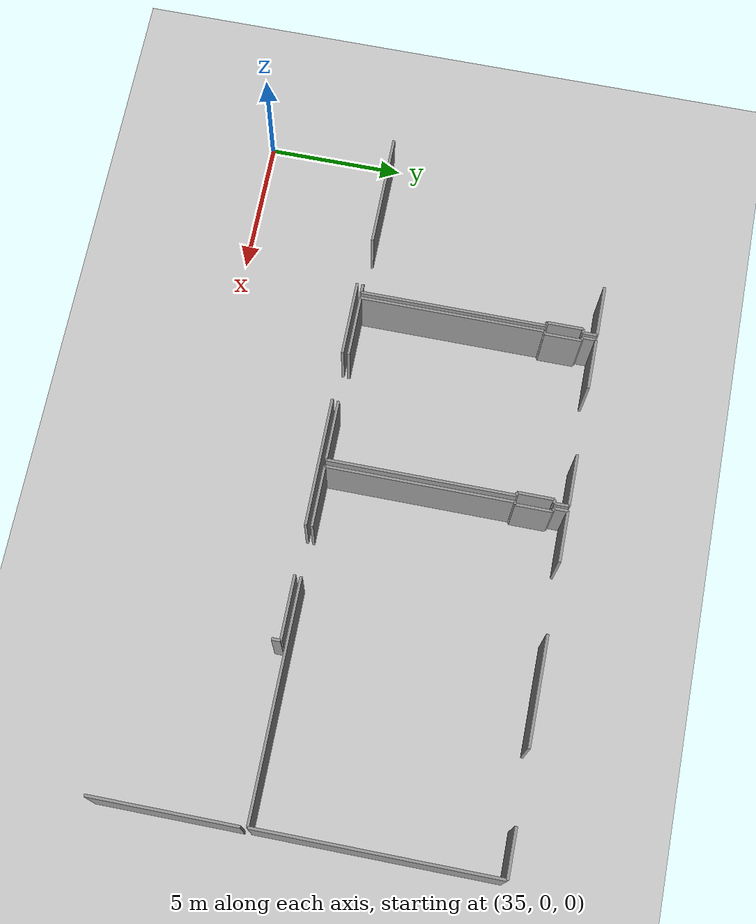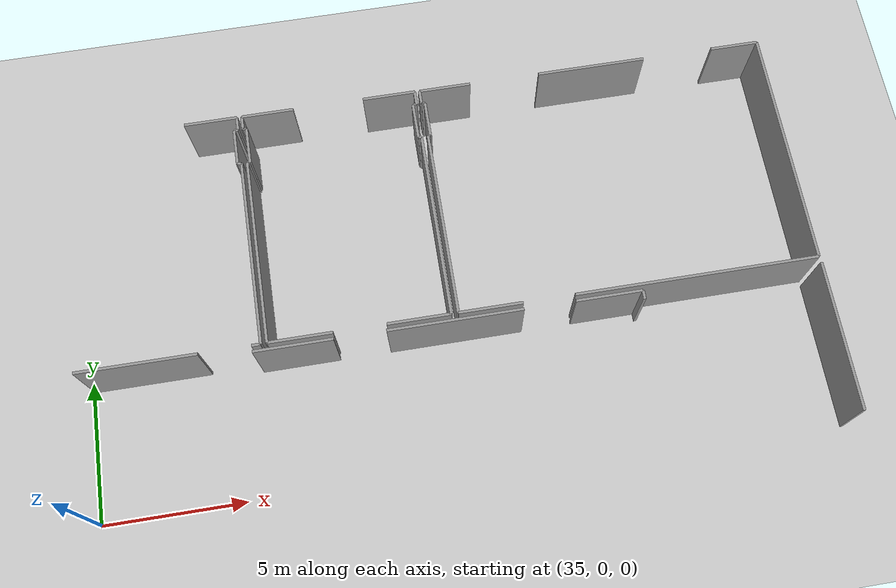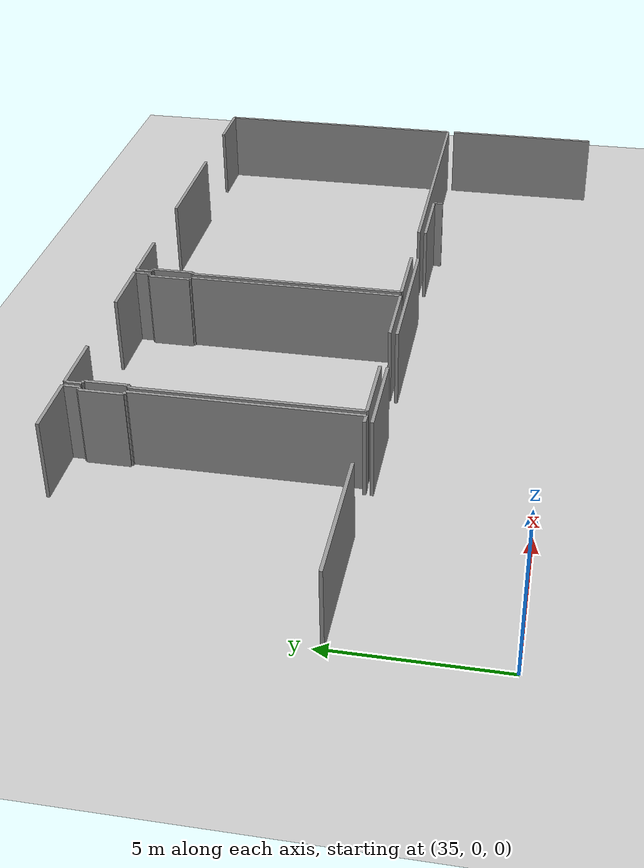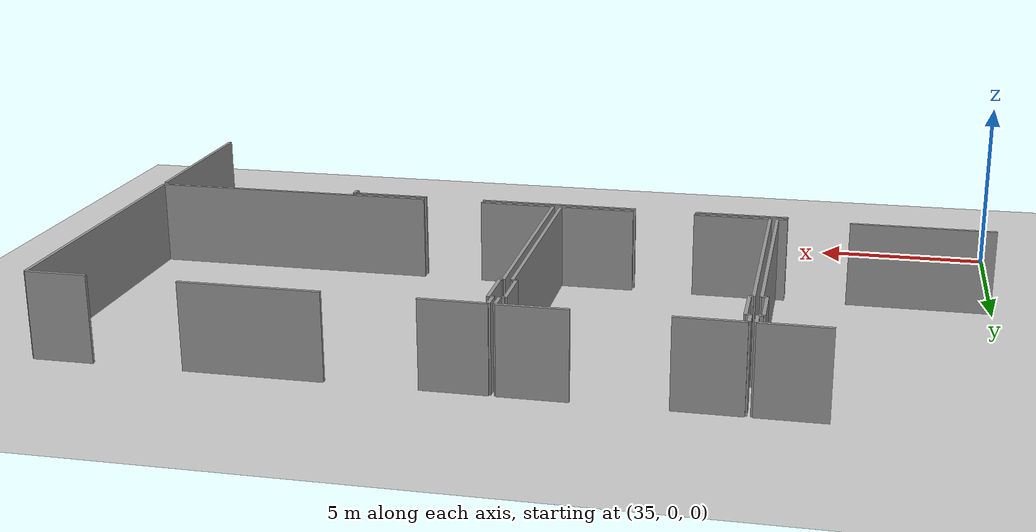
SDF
<sdf version="1.6">
 <world name="default">
  <model name="ground_plane">
   <static>1</static>
   <link name="link">
    <collision name="collision">
     <geometry><plane><normal>0 0 1</normal><size>100 100</size></plane></geometry>
     <surface><friction><ode><mu>100</mu><mu2>50</mu2></ode></friction></surface>
    </collision>
    <visual name="visual">
     <cast_shadows>0</cast_shadows>
     <geometry><plane><normal>0 0 1</normal><size>100 100</size></plane></geometry>
     <material>
      <script><uri>file://media/materials/scripts/gazebo.material</uri><name>Gazebo/Grey</name></script>
     </material>
    </visual>
   </link>
  </model>
  <model name="0510040943_A-40">
   <static>1</static>
   <link name="Wall_450">
    <collision name="Wall_450_Collision">
     <geometry><box><size>5.25650783985 0.1 2.5</size></box></geometry>
     <pose>2.62825391993 0 1.25 0 0 0</pose>
    </collision>
    <visual name="Wall_450_Visual">
     <pose>2.62825391993 0 1.25 0 0 0</pose>
     <geometry><box><size>5.25650783985 0.1 2.5</size></box></geometry>
     <material>
      <script><uri>file://media/materials/scripts/gazebo.material</uri><name>Gazebo/Grey</name></script>
      <ambient>1 1 1 1</ambient>
     </material>
    </visual>
    <pose>116.799487492 -8.884660273 0 0 0 -1.57079632679</pose>
   </link>
   <link name="Wall_462">
    <collision name="Wall_462_Collision">
     <geometry><box><size>2.74673973715 0.1 2.5</size></box></geometry>
     <pose>1.37336986857 0 1.25 0 0 0</pose>
    </collision>
    <visual name="Wall_462_Visual">
     <pose>1.37336986857 0 1.25 0 0 0</pose>
     <geometry><box><size>2.74673973715 0.1 2.5</size></box></geometry>
     <material>
      <script><uri>file://media/materials/scripts/gazebo.material</uri><name>Gazebo/Grey</name></script>
      <ambient>1 1 1 1</ambient>
     </material>
    </visual>
    <pose>97.1349013041 -8.87628761354 0 0 0 0.0</pose>
   </link>
   <link name="Wall_463">
    <collision name="Wall_463_Collision">
     <geometry><box><size>4.71913533262 0.1 2.5</size></box></geometry>
     <pose>2.35956766631 0 1.25 0 0 0</pose>
    </collision>
    <visual name="Wall_463_Visual">
     <pose>2.35956766631 0 1.25 0 0 0</pose>
     <geometry><box><size>4.71913533262 0.1 2.5</size></box></geometry>
     <material>
      <script><uri>file://media/materials/scripts/gazebo.material</uri><name>Gazebo/Grey</name></script>
      <ambient>1 1 1 1</ambient>
     </material>
    </visual>
    <pose>101.678591363 -8.87628761354 0 0 0 0.0</pose>
   </link>
   <link name="Wall_464">
    <collision name="Wall_464_Collision">
     <geometry><box><size>2.32759933019 0.1 2.5</size></box></geometry>
     <pose>1.16379966509 0 1.25 0 0 0</pose>
    </collision>
    <visual name="Wall_464_Visual">
     <pose>1.16379966509 0 1.25 0 0 0</pose>
     <geometry><box><size>2.32759933019 0.1 2.5</size></box></geometry>
     <material>
      <script><uri>file://media/materials/scripts/gazebo.material</uri><name>Gazebo/Grey</name></script>
      <ambient>1 1 1 1</ambient>
     </material>
    </visual>
    <pose>108.188080378 -8.87628761354 0 0 0 0.0</pose>
   </link>
   <link name="Wall_465">
    <collision name="Wall_465_Collision">
     <geometry><box><size>0.317907342569 0.1 2.5</size></box></geometry>
     <pose>0.158953671284 0 1.25 0 0 0</pose>
    </collision>
    <visual name="Wall_465_Visual">
     <pose>0.158953671284 0 1.25 0 0 0</pose>
     <geometry><box><size>0.317907342569 0.1 2.5</size></box></geometry>
     <material>
      <script><uri>file://media/materials/scripts/gazebo.material</uri><name>Gazebo/Grey</name></script>
      <ambient>1 1 1 1</ambient>
     </material>
    </visual>
    <pose>110.515679708 -8.87628761354 0 0 0 -1.57079632679</pose>
   </link>
   <link name="Wall_474">
    <collision name="Wall_474_Collision">
     <geometry><box><size>6.75990764703 0.1 2.5</size></box></geometry>
     <pose>3.37995382351 0 1.25 0 0 0</pose>
    </collision>
    <visual name="Wall_474_Visual">
     <pose>3.37995382351 0 1.25 0 0 0</pose>
     <geometry><box><size>6.75990764703 0.1 2.5</size></box></geometry>
     <material>
      <script><uri>file://media/materials/scripts/gazebo.material</uri><name>Gazebo/Grey</name></script>
      <ambient>1 1 1 1</ambient>
     </material>
    </visual>
    <pose>104.168823261 -8.64857664789 0 0 0 1.57079632679</pose>
   </link>
   <link name="Wall_475">
    <collision name="Wall_475_Collision">
     <geometry><box><size>0.0870249150048 0.1 2.5</size></box></geometry>
     <pose>0.0435124575024 0 1.25 0 0 0</pose>
    </collision>
    <visual name="Wall_475_Visual">
     <pose>0.0435124575024 0 1.25 0 0 0</pose>
     <geometry><box><size>0.0870249150048 0.1 2.5</size></box></geometry>
     <material>
      <script><uri>file://media/materials/scripts/gazebo.material</uri><name>Gazebo/Grey</name></script>
      <ambient>1 1 1 1</ambient>
     </material>
    </visual>
    <pose>104.168823261 -1.88866900086 0 0 0 0.0</pose>
   </link>
   <link name="Wall_476">
    <collision name="Wall_476_Collision">
     <geometry><box><size>1.32732024154 0.1 2.5</size></box></geometry>
     <pose>0.663660120769 0 1.25 0 0 0</pose>
    </collision>
    <visual name="Wall_476_Visual">
     <pose>0.663660120769 0 1.25 0 0 0</pose>
     <geometry><box><size>1.32732024154 0.1 2.5</size></box></geometry>
     <material>
      <script><uri>file://media/materials/scripts/gazebo.material</uri><name>Gazebo/Grey</name></script>
      <ambient>1 1 1 1</ambient>
     </material>
    </visual>
    <pose>104.255848176 -1.88866900086 0 0 0 1.57079632679</pose>
   </link>
   <link name="Wall_477">
    <collision name="Wall_477_Collision">
     <geometry><box><size>0.123306439336 0.1 2.5</size></box></geometry>
     <pose>0.0616532196681 0 1.25 0 0 0</pose>
    </collision>
    <visual name="Wall_477_Visual">
     <pose>0.0616532196681 0 1.25 0 0 0</pose>
     <geometry><box><size>0.123306439336 0.1 2.5</size></box></geometry>
     <material>
      <script><uri>file://media/materials/scripts/gazebo.material</uri><name>Gazebo/Grey</name></script>
      <ambient>1 1 1 1</ambient>
     </material>
    </visual>
    <pose>104.255848176 -0.561348759324 0 0 0 3.14159265359</pose>
   </link>
   <link name="Wall_478">
    <collision name="Wall_478_Collision">
     <geometry><box><size>0.515045415335 0.1 2.5</size></box></geometry>
     <pose>0.257522707667 0 1.25 0 0 0</pose>
    </collision>
    <visual name="Wall_478_Visual">
     <pose>0.257522707667 0 1.25 0 0 0</pose>
     <geometry><box><size>0.515045415335 0.1 2.5</size></box></geometry>
     <material>
      <script><uri>file://media/materials/scripts/gazebo.material</uri><name>Gazebo/Grey</name></script>
      <ambient>1 1 1 1</ambient>
     </material>
    </visual>
    <pose>104.132541736 -0.561348759324 0 0 0 1.57079632679</pose>
   </link>
   <link name="Wall_479">
    <collision name="Wall_479_Collision">
     <geometry><box><size>1.86418531486 0.1 2.5</size></box></geometry>
     <pose>0.932092657431 0 1.25 0 0 0</pose>
    </collision>
    <visual name="Wall_479_Visual">
     <pose>0.932092657431 0 1.25 0 0 0</pose>
     <geometry><box><size>1.86418531486 0.1 2.5</size></box></geometry>
     <material>
      <script><uri>file://media/materials/scripts/gazebo.material</uri><name>Gazebo/Grey</name></script>
      <ambient>1 1 1 1</ambient>
     </material>
    </visual>
    <pose>104.132541736 -0.0463033439894 0 0 0 0.0</pose>
   </link>
   <link name="Wall_480">
    <collision name="Wall_480_Collision">
     <geometry><box><size>3.92855330593 0.1 2.5</size></box></geometry>
     <pose>1.96427665297 0 1.25 0 0 0</pose>
    </collision>
    <visual name="Wall_480_Visual">
     <pose>1.96427665297 0 1.25 0 0 0</pose>
     <geometry><box><size>3.92855330593 0.1 2.5</size></box></geometry>
     <material>
      <script><uri>file://media/materials/scripts/gazebo.material</uri><name>Gazebo/Grey</name></script>
      <ambient>1 1 1 1</ambient>
     </material>
    </visual>
    <pose>108.548865885 -0.0463033439894 0 0 0 0.0</pose>
   </link>
   <link name="Wall_481">
    <collision name="Wall_481_Collision">
     <geometry><box><size>1.7328867915 0.1 2.5</size></box></geometry>
     <pose>0.866443395748 0 1.25 0 0 0</pose>
    </collision>
    <visual name="Wall_481_Visual">
     <pose>0.866443395748 0 1.25 0 0 0</pose>
     <geometry><box><size>1.7328867915 0.1 2.5</size></box></geometry>
     <material>
      <script><uri>file://media/materials/scripts/gazebo.material</uri><name>Gazebo/Grey</name></script>
      <ambient>1 1 1 1</ambient>
     </material>
    </visual>
    <pose>115.038691835 -0.0463033439894 0 0 0 0.0</pose>
   </link>
   <link name="Wall_482">
    <collision name="Wall_482_Collision">
     <geometry><box><size>8.60430303953 0.1 2.5</size></box></geometry>
     <pose>4.30215151976 0 1.25 0 0 0</pose>
    </collision>
    <visual name="Wall_482_Visual">
     <pose>4.30215151976 0 1.25 0 0 0</pose>
     <geometry><box><size>8.60430303953 0.1 2.5</size></box></geometry>
     <material>
      <script><uri>file://media/materials/scripts/gazebo.material</uri><name>Gazebo/Grey</name></script>
      <ambient>1 1 1 1</ambient>
     </material>
    </visual>
    <pose>116.771578627 -0.0463033439894 0 0 0 -1.57079632679</pose>
   </link>
   <link name="Wall_483">
    <collision name="Wall_483_Collision">
     <geometry><box><size>8.56117115746 0.1 2.5</size></box></geometry>
     <pose>4.28058557873 0 1.25 0 0 0</pose>
    </collision>
    <visual name="Wall_483_Visual">
     <pose>4.28058557873 0 1.25 0 0 0</pose>
     <geometry><box><size>8.56117115746 0.1 2.5</size></box></geometry>
     <material>
      <script><uri>file://media/materials/scripts/gazebo.material</uri><name>Gazebo/Grey</name></script>
      <ambient>1 1 1 1</ambient>
     </material>
    </visual>
    <pose>116.771578627 -8.65060638352 0 0 0 3.14159265359</pose>
   </link>
   <link name="Wall_484">
    <collision name="Wall_484_Collision">
     <geometry><box><size>2.23727701551 0.1 2.5</size></box></geometry>
     <pose>1.11863850776 0 1.25 0 0 0</pose>
    </collision>
    <visual name="Wall_484_Visual">
     <pose>1.11863850776 0 1.25 0 0 0</pose>
     <geometry><box><size>2.23727701551 0.1 2.5</size></box></geometry>
     <material>
      <script><uri>file://media/materials/scripts/gazebo.material</uri><name>Gazebo/Grey</name></script>
      <ambient>1 1 1 1</ambient>
     </material>
    </visual>
    <pose>106.406099356 -8.65060638352 0 0 0 3.14068541864</pose>
   </link>
   <link name="Wall_485">
    <collision name="Wall_485_Collision">
     <geometry><box><size>6.75483330796 0.1 2.5</size></box></geometry>
     <pose>3.37741665398 0 1.25 0 0 0</pose>
    </collision>
    <visual name="Wall_485_Visual">
     <pose>3.37741665398 0 1.25 0 0 0</pose>
     <geometry><box><size>6.75483330796 0.1 2.5</size></box></geometry>
     <material>
      <script><uri>file://media/materials/scripts/gazebo.material</uri><name>Gazebo/Grey</name></script>
      <ambient>1 1 1 1</ambient>
     </material>
    </visual>
    <pose>97.6555284924 -8.64857664789 0 0 0 1.57079632679</pose>
   </link>
   <link name="Wall_486">
    <collision name="Wall_486_Collision">
     <geometry><box><size>0.101613639823 0.1 2.5</size></box></geometry>
     <pose>0.0508068199117 0 1.25 0 0 0</pose>
    </collision>
    <visual name="Wall_486_Visual">
     <pose>0.0508068199117 0 1.25 0 0 0</pose>
     <geometry><box><size>0.101613639823 0.1 2.5</size></box></geometry>
     <material>
      <script><uri>file://media/materials/scripts/gazebo.material</uri><name>Gazebo/Grey</name></script>
      <ambient>1 1 1 1</ambient>
     </material>
    </visual>
    <pose>97.6555284924 -1.89374333993 0 0 0 0.0</pose>
   </link>
   <link name="Wall_487">
    <collision name="Wall_487_Collision">
     <geometry><box><size>1.34368498503 0.1 2.5</size></box></geometry>
     <pose>0.671842492515 0 1.25 0 0 0</pose>
    </collision>
    <visual name="Wall_487_Visual">
     <pose>0.671842492515 0 1.25 0 0 0</pose>
     <geometry><box><size>1.34368498503 0.1 2.5</size></box></geometry>
     <material>
      <script><uri>file://media/materials/scripts/gazebo.material</uri><name>Gazebo/Grey</name></script>
      <ambient>1 1 1 1</ambient>
     </material>
    </visual>
    <pose>97.7571421322 -1.89374333993 0 0 0 1.57079632679</pose>
   </link>
   <link name="Wall_488">
    <collision name="Wall_488_Collision">
     <geometry><box><size>0.120642411326 0.1 2.5</size></box></geometry>
     <pose>0.060321205663 0 1.25 0 0 0</pose>
    </collision>
    <visual name="Wall_488_Visual">
     <pose>0.060321205663 0 1.25 0 0 0</pose>
     <geometry><box><size>0.120642411326 0.1 2.5</size></box></geometry>
     <material>
      <script><uri>file://media/materials/scripts/gazebo.material</uri><name>Gazebo/Grey</name></script>
      <ambient>1 1 1 1</ambient>
     </material>
    </visual>
    <pose>97.7571421322 -0.550058354899 0 0 0 3.14159265359</pose>
   </link>
   <link name="Wall_489">
    <collision name="Wall_489_Collision">
     <geometry><box><size>0.510097934744 0.1 2.5</size></box></geometry>
     <pose>0.255048967372 0 1.25 0 0 0</pose>
    </collision>
    <visual name="Wall_489_Visual">
     <pose>0.255048967372 0 1.25 0 0 0</pose>
     <geometry><box><size>0.510097934744 0.1 2.5</size></box></geometry>
     <material>
      <script><uri>file://media/materials/scripts/gazebo.material</uri><name>Gazebo/Grey</name></script>
      <ambient>1 1 1 1</ambient>
     </material>
    </visual>
    <pose>97.6364997209 -0.550058354899 0 0 0 1.57079632679</pose>
   </link>
   <link name="Wall_490">
    <collision name="Wall_490_Collision">
     <geometry><box><size>1.87560257776 0.1 2.5</size></box></geometry>
     <pose>0.937801288882 0 1.25 0 0 0</pose>
    </collision>
    <visual name="Wall_490_Visual">
     <pose>0.937801288882 0 1.25 0 0 0</pose>
     <geometry><box><size>1.87560257776 0.1 2.5</size></box></geometry>
     <material>
      <script><uri>file://media/materials/scripts/gazebo.material</uri><name>Gazebo/Grey</name></script>
      <ambient>1 1 1 1</ambient>
     </material>
    </visual>
    <pose>97.6364997209 -0.0399604201553 0 0 0 0.0</pose>
   </link>
   <link name="Wall_491">
    <collision name="Wall_491_Collision">
     <geometry><box><size>1.9031308672 0.1 2.5</size></box></geometry>
     <pose>0.951565433602 0 1.25 0 0 0</pose>
    </collision>
    <visual name="Wall_491_Visual">
     <pose>0.951565433602 0 1.25 0 0 0</pose>
     <geometry><box><size>1.9031308672 0.1 2.5</size></box></geometry>
     <material>
      <script><uri>file://media/materials/scripts/gazebo.material</uri><name>Gazebo/Grey</name></script>
      <ambient>1 1 1 1</ambient>
     </material>
    </visual>
    <pose>102.051428426 -0.0399604201553 0 0 0 0.0</pose>
   </link>
   <link name="Wall_492">
    <collision name="Wall_492_Collision">
     <geometry><box><size>0.521007763739 0.1 2.5</size></box></geometry>
     <pose>0.260503881869 0 1.25 0 0 0</pose>
    </collision>
    <visual name="Wall_492_Visual">
     <pose>0.260503881869 0 1.25 0 0 0</pose>
     <geometry><box><size>0.521007763739 0.1 2.5</size></box></geometry>
     <material>
      <script><uri>file://media/materials/scripts/gazebo.material</uri><name>Gazebo/Grey</name></script>
      <ambient>1 1 1 1</ambient>
     </material>
    </visual>
    <pose>103.954559294 -0.0399604201553 0 0 0 -1.57079632679</pose>
   </link>
   <link name="Wall_493">
    <collision name="Wall_493_Collision">
     <geometry><box><size>0.137134013295 0.1 2.5</size></box></geometry>
     <pose>0.0685670066474 0 1.25 0 0 0</pose>
    </collision>
    <visual name="Wall_493_Visual">
     <pose>0.0685670066474 0 1.25 0 0 0</pose>
     <geometry><box><size>0.137134013295 0.1 2.5</size></box></geometry>
     <material>
      <script><uri>file://media/materials/scripts/gazebo.material</uri><name>Gazebo/Grey</name></script>
      <ambient>1 1 1 1</ambient>
     </material>
    </visual>
    <pose>103.954559294 -0.560968183894 0 0 0 3.14159265359</pose>
   </link>
   <link name="Wall_494">
    <collision name="Wall_494_Collision">
     <geometry><box><size>1.32554422286 0.1 2.5</size></box></geometry>
     <pose>0.662772111432 0 1.25 0 0 0</pose>
    </collision>
    <visual name="Wall_494_Visual">
     <pose>0.662772111432 0 1.25 0 0 0</pose>
     <geometry><box><size>1.32554422286 0.1 2.5</size></box></geometry>
     <material>
      <script><uri>file://media/materials/scripts/gazebo.material</uri><name>Gazebo/Grey</name></script>
      <ambient>1 1 1 1</ambient>
     </material>
    </visual>
    <pose>103.81742528 -0.560968183894 0 0 0 -1.57079632679</pose>
   </link>
   <link name="Wall_495">
    <collision name="Wall_495_Collision">
     <geometry><box><size>0.111381742528 0.1 2.5</size></box></geometry>
     <pose>0.055690871264 0 1.25 0 0 0</pose>
    </collision>
    <visual name="Wall_495_Visual">
     <pose>0.055690871264 0 1.25 0 0 0</pose>
     <geometry><box><size>0.111381742528 0.1 2.5</size></box></geometry>
     <material>
      <script><uri>file://media/materials/scripts/gazebo.material</uri><name>Gazebo/Grey</name></script>
      <ambient>1 1 1 1</ambient>
     </material>
    </visual>
    <pose>103.81742528 -1.88651240676 0 0 0 0.0</pose>
   </link>
   <link name="Wall_496">
    <collision name="Wall_496_Collision">
     <geometry><box><size>6.76523570305 0.1 2.5</size></box></geometry>
     <pose>3.38261785152 0 1.25 0 0 0</pose>
    </collision>
    <visual name="Wall_496_Visual">
     <pose>3.38261785152 0 1.25 0 0 0</pose>
     <geometry><box><size>6.76523570305 0.1 2.5</size></box></geometry>
     <material>
      <script><uri>file://media/materials/scripts/gazebo.material</uri><name>Gazebo/Grey</name></script>
      <ambient>1 1 1 1</ambient>
     </material>
    </visual>
    <pose>103.928807023 -1.88651240676 0 0 0 -1.57079632679</pose>
   </link>
   <link name="Wall_497">
    <collision name="Wall_497_Collision">
     <geometry><box><size>2.20911351296 0.1 2.5</size></box></geometry>
     <pose>1.10455675648 0 1.25 0 0 0</pose>
    </collision>
    <visual name="Wall_497_Visual">
     <pose>1.10455675648 0 1.25 0 0 0</pose>
     <geometry><box><size>2.20911351296 0.1 2.5</size></box></geometry>
     <material>
      <script><uri>file://media/materials/scripts/gazebo.material</uri><name>Gazebo/Grey</name></script>
      <ambient>1 1 1 1</ambient>
     </material>
    </visual>
    <pose>103.928807023 -8.65174810981 0 0 0 3.14159265359</pose>
   </link>
   <link name="Wall_498">
    <collision name="Wall_498_Collision">
     <geometry><box><size>2.24121095148 0.1 2.5</size></box></geometry>
     <pose>1.12060547574 0 1.25 0 0 0</pose>
    </collision>
    <visual name="Wall_498_Visual">
     <pose>1.12060547574 0 1.25 0 0 0</pose>
     <geometry><box><size>2.24121095148 0.1 2.5</size></box></geometry>
     <material>
      <script><uri>file://media/materials/scripts/gazebo.material</uri><name>Gazebo/Grey</name></script>
      <ambient>1 1 1 1</ambient>
     </material>
    </visual>
    <pose>99.8967372 -8.65174810981 0 0 0 3.14017758689</pose>
   </link>
   <link name="Wall_505">
    <collision name="Wall_505_Collision">
     <geometry><box><size>1.89767595271 0.1 2.5</size></box></geometry>
     <pose>0.948837976354 0 1.25 0 0 0</pose>
    </collision>
    <visual name="Wall_505_Visual">
     <pose>0.948837976354 0 1.25 0 0 0</pose>
     <geometry><box><size>1.89767595271 0.1 2.5</size></box></geometry>
     <material>
      <script><uri>file://media/materials/scripts/gazebo.material</uri><name>Gazebo/Grey</name></script>
      <ambient>1 1 1 1</ambient>
     </material>
    </visual>
    <pose>95.557796722 -0.0399604201553 0 0 0 0.0</pose>
   </link>
   <link name="Wall_506">
    <collision name="Wall_506_Collision">
     <geometry><box><size>0.510097934744 0.1 2.5</size></box></geometry>
     <pose>0.255048967372 0 1.25 0 0 0</pose>
    </collision>
    <visual name="Wall_506_Visual">
     <pose>0.255048967372 0 1.25 0 0 0</pose>
     <geometry><box><size>0.510097934744 0.1 2.5</size></box></geometry>
     <material>
      <script><uri>file://media/materials/scripts/gazebo.material</uri><name>Gazebo/Grey</name></script>
      <ambient>1 1 1 1</ambient>
     </material>
    </visual>
    <pose>97.4554726747 -0.0399604201553 0 0 0 -1.57079632679</pose>
   </link>
   <link name="Wall_507">
    <collision name="Wall_507_Collision">
     <geometry><box><size>0.142588927792 0.1 2.5</size></box></geometry>
     <pose>0.0712944638961 0 1.25 0 0 0</pose>
    </collision>
    <visual name="Wall_507_Visual">
     <pose>0.0712944638961 0 1.25 0 0 0</pose>
     <geometry><box><size>0.142588927792 0.1 2.5</size></box></geometry>
     <material>
      <script><uri>file://media/materials/scripts/gazebo.material</uri><name>Gazebo/Grey</name></script>
      <ambient>1 1 1 1</ambient>
     </material>
    </visual>
    <pose>97.4554726747 -0.550058354899 0 0 0 3.14159265359</pose>
   </link>
   <link name="Wall_508">
    <collision name="Wall_508_Collision">
     <geometry><box><size>1.33645405186 0.1 2.5</size></box></geometry>
     <pose>0.66822702593 0 1.25 0 0 0</pose>
    </collision>
    <visual name="Wall_508_Visual">
     <pose>0.66822702593 0 1.25 0 0 0</pose>
     <geometry><box><size>1.33645405186 0.1 2.5</size></box></geometry>
     <material>
      <script><uri>file://media/materials/scripts/gazebo.material</uri><name>Gazebo/Grey</name></script>
      <ambient>1 1 1 1</ambient>
     </material>
    </visual>
    <pose>97.3128837469 -0.550058354899 0 0 0 -1.57079632679</pose>
   </link>
   <link name="Wall_509">
    <collision name="Wall_509_Collision">
     <geometry><box><size>0.134850560714 0.1 2.5</size></box></geometry>
     <pose>0.0674252803572 0 1.25 0 0 0</pose>
    </collision>
    <visual name="Wall_509_Visual">
     <pose>0.0674252803572 0 1.25 0 0 0</pose>
     <geometry><box><size>0.134850560714 0.1 2.5</size></box></geometry>
     <material>
      <script><uri>file://media/materials/scripts/gazebo.material</uri><name>Gazebo/Grey</name></script>
      <ambient>1 1 1 1</ambient>
     </material>
    </visual>
    <pose>97.3128837469 -1.88651240676 0 0 0 0.0</pose>
   </link>
   <link name="Wall_510">
    <collision name="Wall_510_Collision">
     <geometry><box><size>6.77944385244 0.1 2.5</size></box></geometry>
     <pose>3.38972192622 0 1.25 0 0 0</pose>
    </collision>
    <visual name="Wall_510_Visual">
     <pose>3.38972192622 0 1.25 0 0 0</pose>
     <geometry><box><size>6.77944385244 0.1 2.5</size></box></geometry>
     <material>
      <script><uri>file://media/materials/scripts/gazebo.material</uri><name>Gazebo/Grey</name></script>
      <ambient>1 1 1 1</ambient>
     </material>
    </visual>
    <pose>97.4477343076 -1.88651240676 0 0 0 -1.57079632679</pose>
   </link>
   <link name="Wall_511">
    <collision name="Wall_511_Collision">
     <geometry><box><size>0.308392956817 0.1 2.5</size></box></geometry>
     <pose>0.154196478409 0 1.25 0 0 0</pose>
    </collision>
    <visual name="Wall_511_Visual">
     <pose>0.154196478409 0 1.25 0 0 0</pose>
     <geometry><box><size>0.308392956817 0.1 2.5</size></box></geometry>
     <material>
      <script><uri>file://media/materials/scripts/gazebo.material</uri><name>Gazebo/Grey</name></script>
      <ambient>1 1 1 1</ambient>
     </material>
    </visual>
    <pose>97.4477343076 -8.6659562592 0 0 0 3.14159265359</pose>
   </link>
   <link name="Wall_512">
    <collision name="Wall_512_Collision">
     <geometry><box><size>4.15843324965 0.1 2.5</size></box></geometry>
     <pose>2.07921662483 0 1.25 0 0 0</pose>
    </collision>
    <visual name="Wall_512_Visual">
     <pose>2.07921662483 0 1.25 0 0 0</pose>
     <geometry><box><size>4.15843324965 0.1 2.5</size></box></geometry>
     <material>
      <script><uri>file://media/materials/scripts/gazebo.material</uri><name>Gazebo/Grey</name></script>
      <ambient>1 1 1 1</ambient>
     </material>
    </visual>
    <pose>95.3368092556 -8.6659562592 0 0 0 3.13915214593</pose>
   </link>
   <pose>-56.15 13.3913863094 0 0 0 0</pose>
  </model>
 </world>
</sdf>
